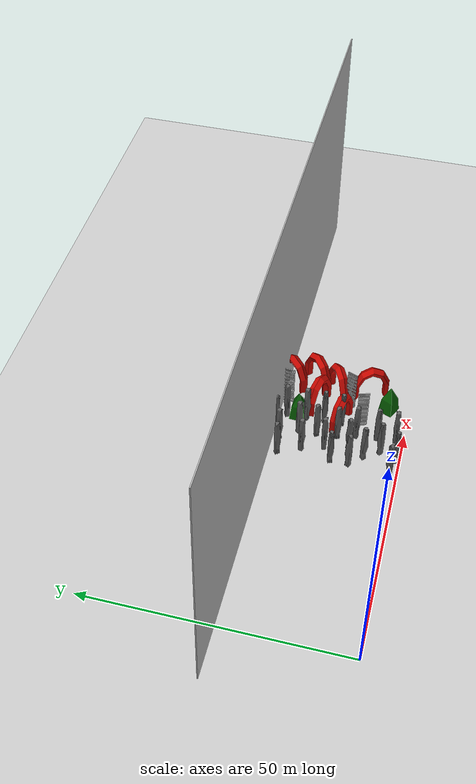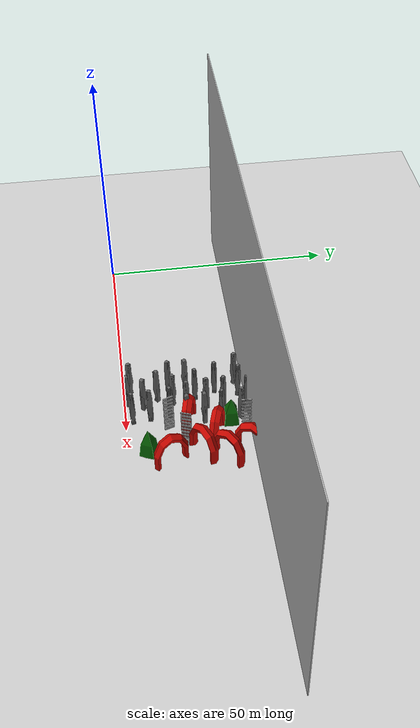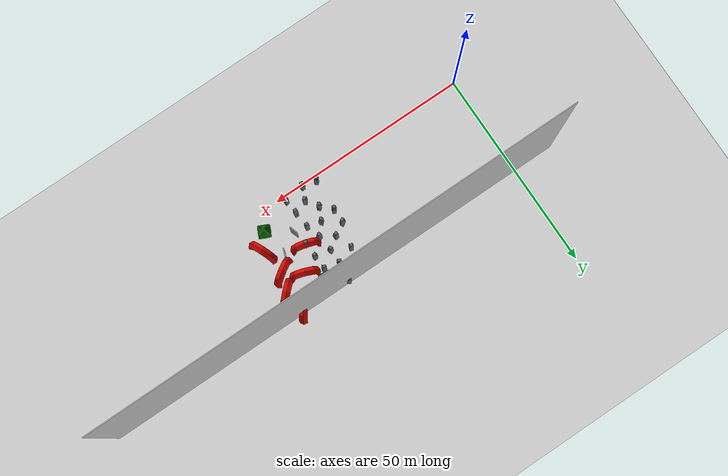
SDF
<sdf version="1.4">
 <world name="default">
  <model name="ground_plane">
   <static>1</static>
   <link name="link">
    <collision name="collision">
     <geometry><plane><normal>0 0 1</normal><size>1000 1000</size></plane></geometry>
     <surface>
      <contact><collide_bitmask>65535</collide_bitmask></contact>
      <friction><ode><mu>100</mu><mu2>50</mu2></ode></friction>
     </surface>
    </collision>
    <visual name="visual">
     <cast_shadows>0</cast_shadows>
     <geometry><plane><normal>0 0 1</normal><size>1000 1000</size></plane></geometry>
    </visual>
   </link>
  </model>
  <model name="wall_left">
   <static>1</static>
   <link name="link">
    <pose>0 0 25.0 0 0 0</pose>
    <collision name="collision"><geometry><box><size>120.0 0.2 50.0</size></box></geometry></collision>
    <visual name="visual">
     <cast_shadows>0</cast_shadows>
     <geometry><box><size>120.0 0.2 50.0</size></box></geometry>
    </visual>
   </link>
   <pose>50.0 25.0 0 0 0 0</pose>
  </model>
  <include><uri>model://sun</uri></include>
  <include>
   <name>columnSimple Stone142</name>
   <uri>model://Simple Stone</uri>
   <pose>39.69243240356445 1.5074729919433594 0 0 0 5.5519497379</pose>
   <static>true</static>
  </include>
  <include>
   <name>columnSimple Stone143</name>
   <uri>model://Simple Stone</uri>
   <pose>40.13813018798828 9.426738739013672 0 0 0 5.79108245429</pose>
   <static>true</static>
  </include>
  <include>
   <name>columnSimple Stone144</name>
   <uri>model://Simple Stone</uri>
   <pose>40.15659713745117 12.930191040039062 0 0 0 1.94267900258</pose>
   <static>true</static>
  </include>
  <include>
   <name>columnSimple Stone145</name>
   <uri>model://Simple Stone</uri>
   <pose>41.797542572021484 18.87430191040039 0 0 0 4.41747426911</pose>
   <static>true</static>
  </include>
  <include>
   <name>columnSimple Stone146</name>
   <uri>model://Simple Stone</uri>
   <pose>39.75053787231445 23.22210693359375 0 0 0 3.71959825507</pose>
   <static>true</static>
  </include>
  <include>
   <name>columnSimple Stone151</name>
   <uri>model://Simple Stone</uri>
   <pose>43.118316650390625 0.7741012573242188 0 0 0 1.5887641737</pose>
   <static>true</static>
  </include>
  <include>
   <name>columnSimple Stone152</name>
   <uri>model://Simple Stone</uri>
   <pose>44.51472854614258 3.987283706665039 0 0 0 0.92771487994</pose>
   <static>true</static>
  </include>
  <include>
   <name>columnSimple Stone153</name>
   <uri>model://Simple Stone</uri>
   <pose>42.558780670166016 6.893960952758789 0 0 0 2.28715497069</pose>
   <static>true</static>
  </include>
  <include>
   <name>columnSimple Stone154</name>
   <uri>model://Simple Stone</uri>
   <pose>44.11094665527344 10.034870147705078 0 0 0 5.4237809266</pose>
   <static>true</static>
  </include>
  <include>
   <name>columnSimple Stone155</name>
   <uri>model://Simple Stone</uri>
   <pose>43.18479919433594 14.692157745361328 0 0 0 4.87086099958</pose>
   <static>true</static>
  </include>
  <include>
   <name>columnSimple Stone156</name>
   <uri>model://Simple Stone</uri>
   <pose>43.232147216796875 23.613143920898438 0 0 0 4.31535485925</pose>
   <static>true</static>
  </include>
  <include>
   <name>columnSimple Stone163</name>
   <uri>model://Simple Stone</uri>
   <pose>46.41575622558594 12.673500061035156 0 0 0 3.43145843998</pose>
   <static>true</static>
  </include>
  <include>
   <name>columnSimple Stone164</name>
   <uri>model://Simple Stone</uri>
   <pose>46.04561233520508 16.71459197998047 0 0 0 3.62891909838</pose>
   <static>true</static>
  </include>
  <include>
   <name>columnSimple Stone165</name>
   <uri>model://Simple Stone</uri>
   <pose>46.030548095703125 20.218059539794922 0 0 0 4.10197656433</pose>
   <static>true</static>
  </include>
  <include>
   <name>columnSimple Stone166</name>
   <uri>model://Simple Stone</uri>
   <pose>46.47956466674805 24.92797088623047 0 0 0 4.27833046858</pose>
   <static>true</static>
  </include>
  <include>
   <name>columnSimple Stone171</name>
   <uri>model://Simple Stone</uri>
   <pose>48.127655029296875 1.5450458526611328 0 0 0 4.87967902396</pose>
   <static>true</static>
  </include>
  <include>
   <name>columnSimple Stone172</name>
   <uri>model://Simple Stone</uri>
   <pose>47.83733367919922 5.098505020141602 0 0 0 3.02396774755</pose>
   <static>true</static>
  </include>
  <include>
   <name>columnSimple Stone173</name>
   <uri>model://Simple Stone</uri>
   <pose>47.50468063354492 9.16476821899414 0 0 0 4.53045753943</pose>
   <static>true</static>
  </include>
  <include>
   <name>columnSimple Stone176</name>
   <uri>model://Simple Stone</uri>
   <pose>49.911014556884766 12.433326721191406 0 0 0 1.64485636064</pose>
   <static>true</static>
  </include>
  <include>
   <name>columnSimple Stone177</name>
   <uri>model://Simple Stone</uri>
   <pose>49.83207321166992 15.935935974121094 0 0 0 1.80264517746</pose>
   <static>true</static>
  </include>
  <include>
   <name>columnSimple Stone178</name>
   <uri>model://Simple Stone</uri>
   <pose>49.66004943847656 19.435211181640625 0 0 0 4.23135442616</pose>
   <static>true</static>
  </include>
  <include>
   <name>columnSimple Stone179</name>
   <uri>model://Simple Stone</uri>
   <pose>49.64830017089844 23.433433532714844 0 0 0 5.27850584655</pose>
   <static>true</static>
  </include>
  <include>
   <name>mixedfence_high4</name>
   <uri>model://fence_high</uri>
   <pose>50.9408797621727 7.645805358886719 0 0 0 0.315772676604</pose>
   <static>true</static>
  </include>
  <include>
   <name>mixedSimple U5</name>
   <uri>model://Simple U</uri>
   <pose>50.19478219747543 12.653587341308594 0 0 0 6.01816255936</pose>
   <static>true</static>
  </include>
  <include>
   <name>mixedSimple Pyramid6</name>
   <uri>model://Simple Pyramid</uri>
   <pose>50.25343671441078 21.246463775634766 0 0 0 2.33010476942</pose>
   <static>true</static>
  </include>
  <include>
   <name>mixedSimple Pyramid10</name>
   <uri>model://Simple Pyramid</uri>
   <pose>56.201876640319824 4.091535568237305 0 0 0 0.346302993051</pose>
   <static>true</static>
  </include>
  <include>
   <name>mixedfence_high11</name>
   <uri>model://fence_high</uri>
   <pose>54.8382625579834 10.785938262939453 0 0 0 5.9165918017</pose>
   <static>true</static>
  </include>
  <include>
   <name>mixedSimple U12</name>
   <uri>model://Simple U</uri>
   <pose>53.99399662017822 17.921070098876953 0 0 0 5.94040702013</pose>
   <static>true</static>
  </include>
  <include>
   <name>mixedfence_high13</name>
   <uri>model://fence_high</uri>
   <pose>53.58788228034973 24.978954315185547 0 0 0 3.07808941716</pose>
   <static>true</static>
  </include>
  <include>
   <name>mixedSimple U18</name>
   <uri>model://Simple U</uri>
   <pose>59.1830530166626 8.301422119140625 0 0 0 5.10692805301</pose>
   <static>true</static>
  </include>
  <include>
   <name>mixedSimple U19</name>
   <uri>model://Simple U</uri>
   <pose>57.87685537338257 14.762996673583984 0 0 0 0.577358232373</pose>
   <static>true</static>
  </include>
  <include>
   <name>mixedSimple U20</name>
   <uri>model://Simple U</uri>
   <pose>59.882612228393555 19.3485107421875 0 0 0 0.780115397698</pose>
   <static>true</static>
  </include>
  <include>
   <name>mixedSimple U21</name>
   <uri>model://Simple U</uri>
   <pose>58.572951316833496 24.179122924804688 0 0 0 0.967047843733</pose>
   <static>true</static>
  </include>
 </world>
</sdf>
